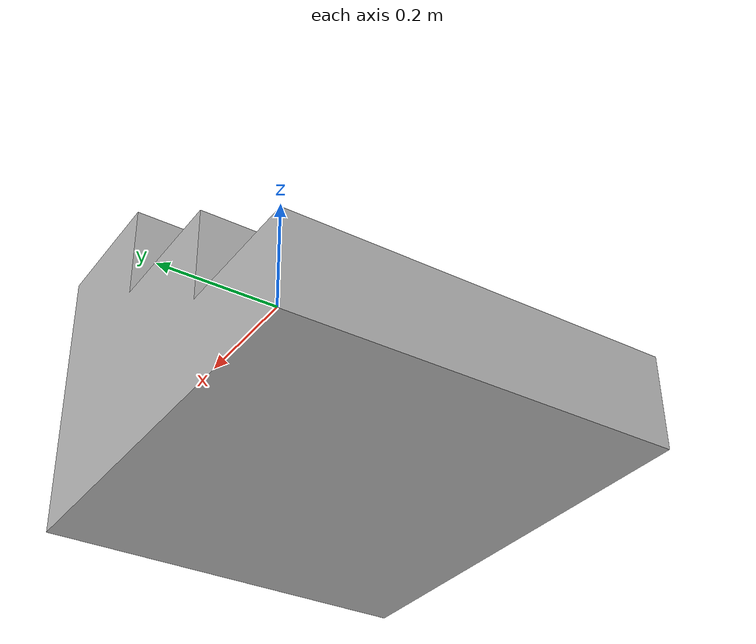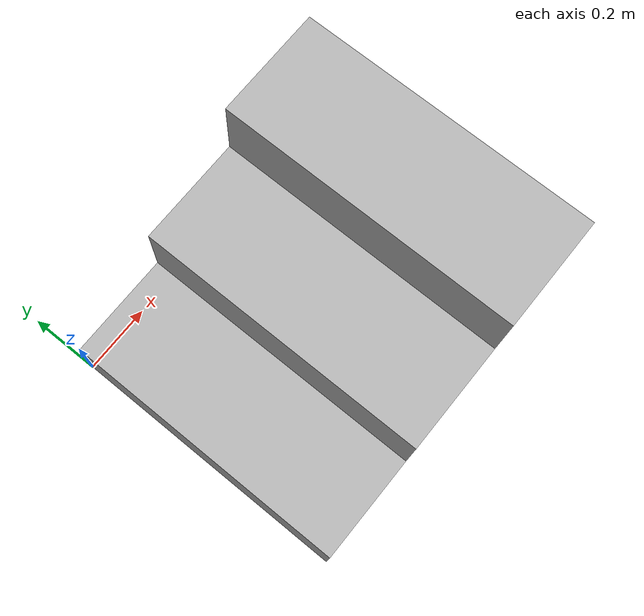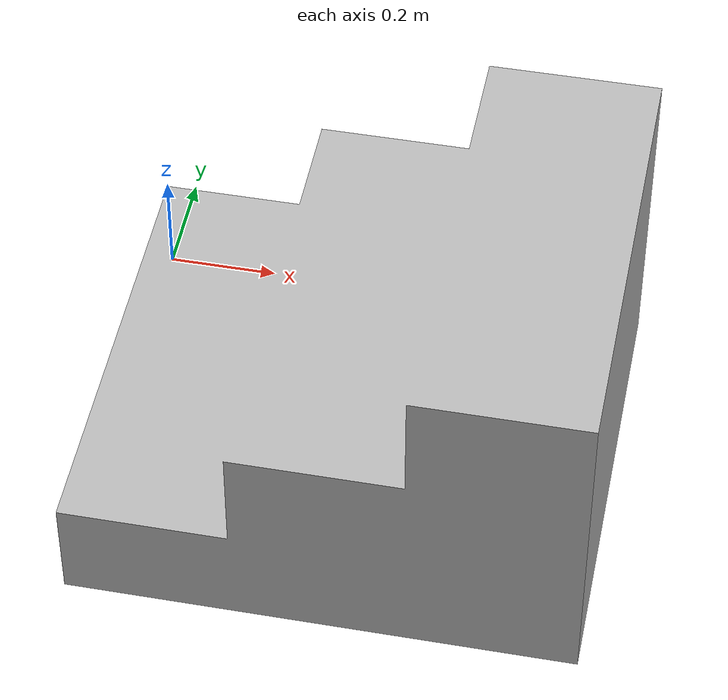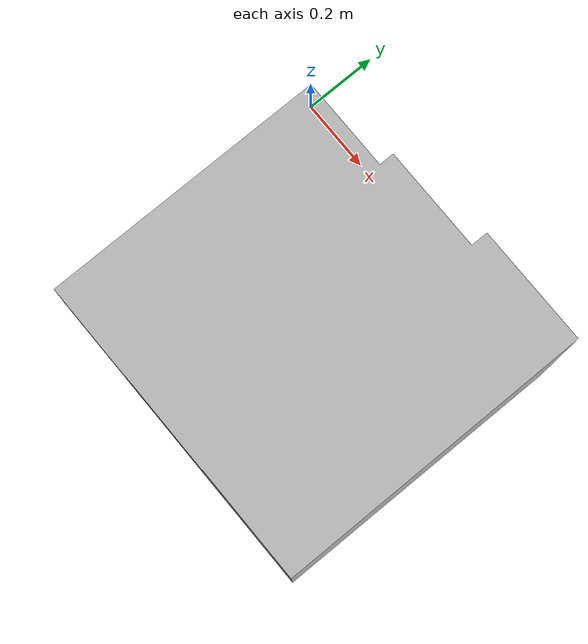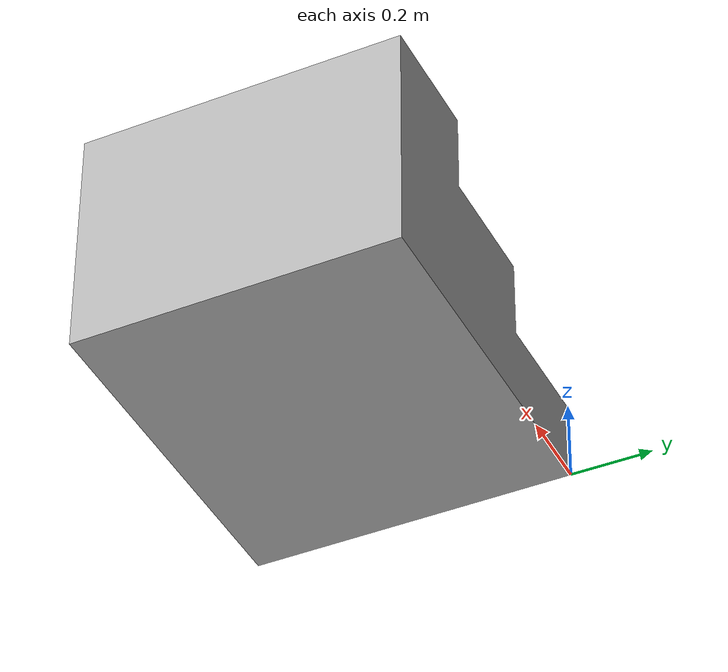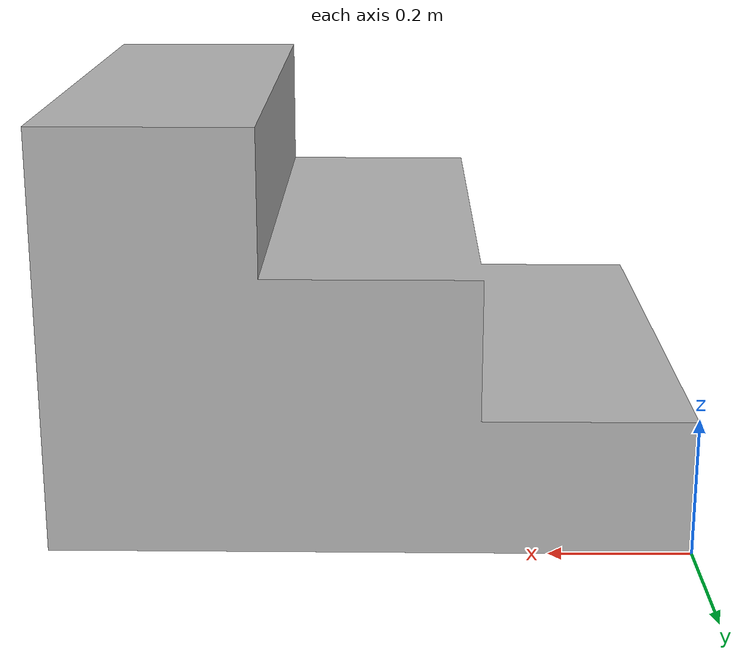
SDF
<?xml version="1.0" ?>
<sdf version="1.5">
  <model name="stairs">
    <pose>0 0 0 1.5707963267949 0 0</pose>
    <link name="stairs">
      <collision name="collision">
        <geometry>
          <mesh>
            <uri>model://stairs/meshes/stairs.stl</uri>
          </mesh>
        </geometry>
      </collision>
      <visual name="visual">
        <geometry>
          <mesh>
            <uri>model://stairs/meshes/stairs.stl</uri>
          </mesh>
        </geometry>
      </visual>
    </link>
  </model>
</sdf>
